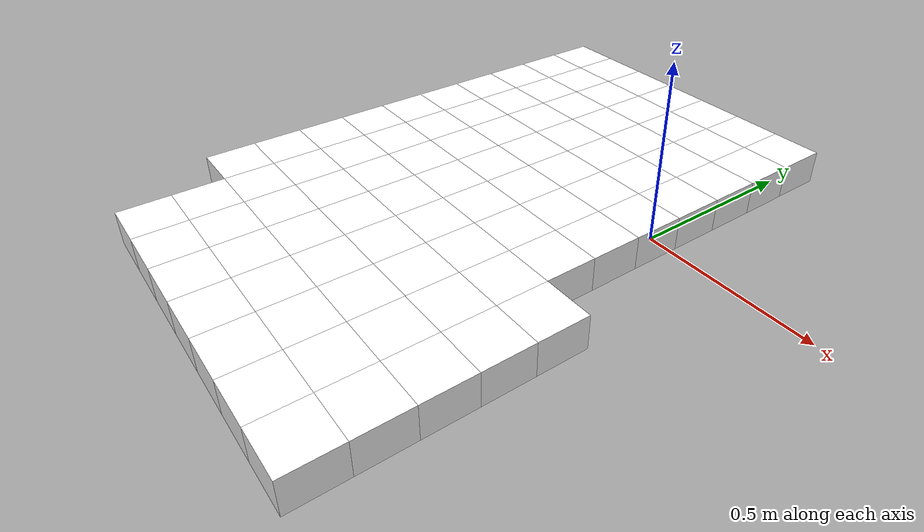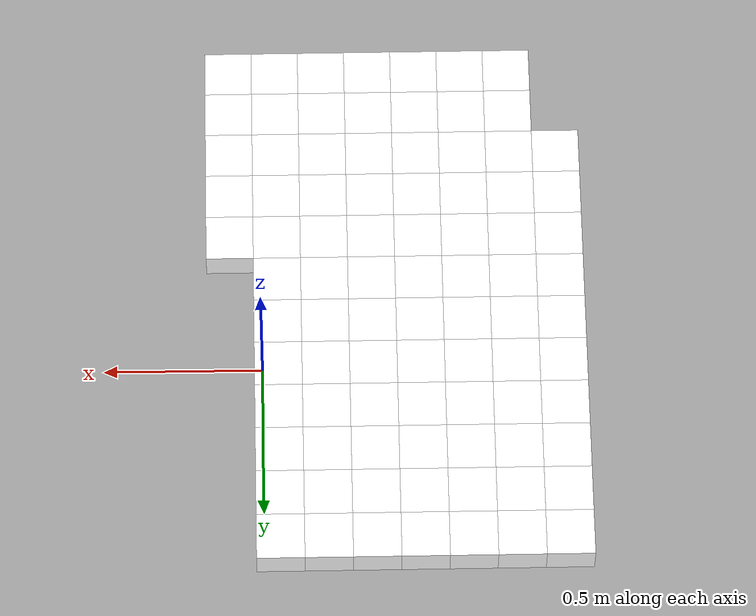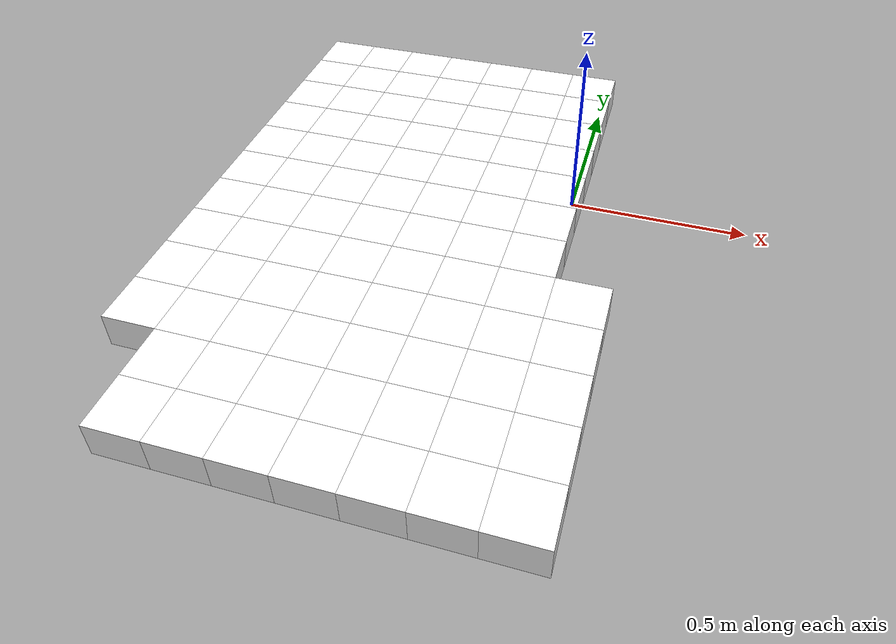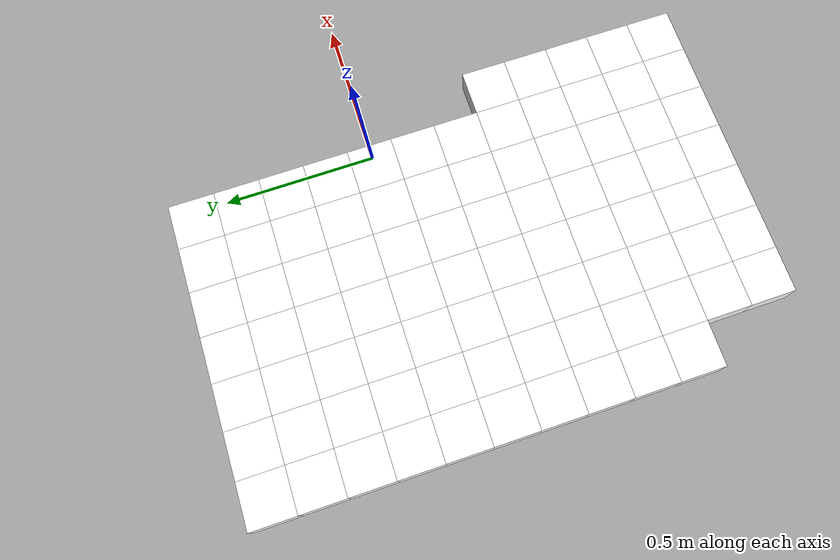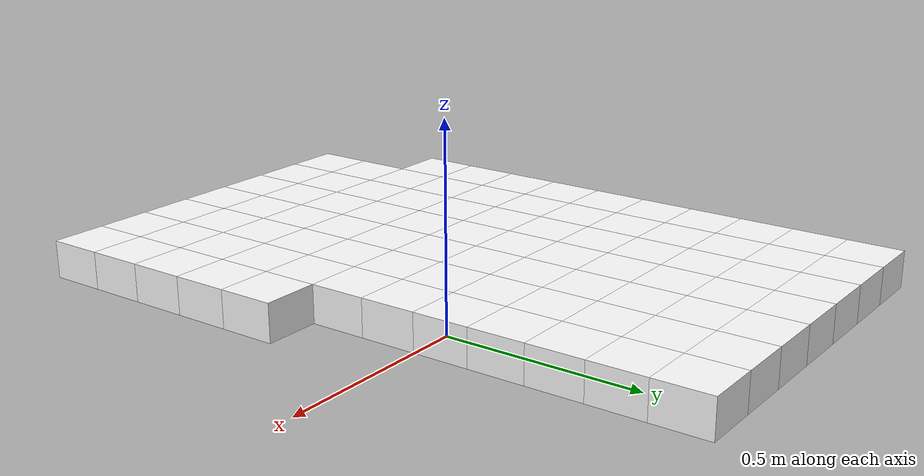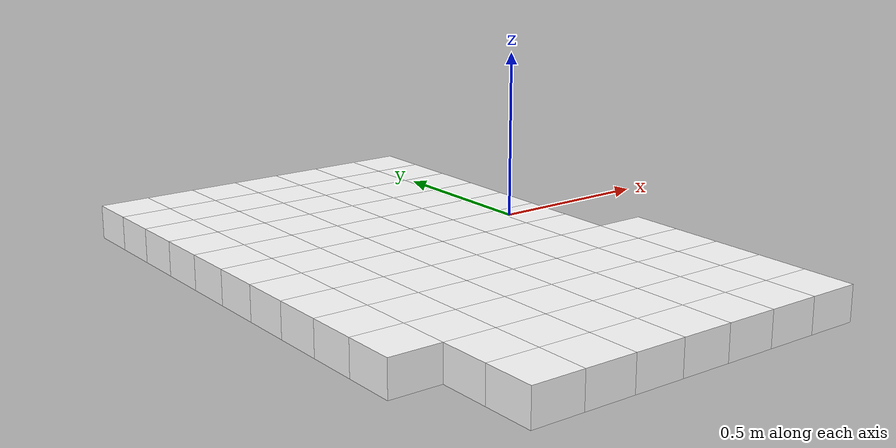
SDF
<sdf version="1.7">
 <world name="default">
  <include><uri>model://sun</uri></include>
  <model name="static_environment">
   <static>true</static>
   <link name="region_140">
    <pose>-0.9500000041566923 0.5999065705961989 0.0 0.0 0.0 4.7123</pose>
    <collision name="region_140_collision">
     <geometry><box><size>0.15 0.15 0.1</size></box></geometry>
     <surface><friction><ode><mu>1.0</mu><mu2>1.0</mu2></ode></friction></surface>
    </collision>
    <visual name="region_140_visual">
     <geometry><box><size>0.15 0.15 0.1</size></box></geometry>
     <material><ambient>1.0 1.0 1.0 1.0</ambient><diffuse>1.0 1.0 1.0 1.0</diffuse></material>
    </visual>
   </link>
   <link name="region_141">
    <pose>-0.9500133512143782 0.44990657119001204 0.0 0.0 0.0 4.7123</pose>
    <collision name="region_141_collision">
     <geometry><box><size>0.15 0.15 0.1</size></box></geometry>
     <surface><friction><ode><mu>1.0</mu><mu2>1.0</mu2></ode></friction></surface>
    </collision>
    <visual name="region_141_visual">
     <geometry><box><size>0.15 0.15 0.1</size></box></geometry>
     <material><ambient>1.0 1.0 1.0 1.0</ambient><diffuse>1.0 1.0 1.0 1.0</diffuse></material>
    </visual>
   </link>
   <link name="region_142">
    <pose>-0.950026698272064 0.29990657178382524 0.0 0.0 0.0 4.7123</pose>
    <collision name="region_142_collision">
     <geometry><box><size>0.15 0.15 0.1</size></box></geometry>
     <surface><friction><ode><mu>1.0</mu><mu2>1.0</mu2></ode></friction></surface>
    </collision>
    <visual name="region_142_visual">
     <geometry><box><size>0.15 0.15 0.1</size></box></geometry>
     <material><ambient>1.0 1.0 1.0 1.0</ambient><diffuse>1.0 1.0 1.0 1.0</diffuse></material>
    </visual>
   </link>
   <link name="region_143">
    <pose>-0.95004004532975 0.14990657237763844 0.0 0.0 0.0 4.7123</pose>
    <collision name="region_143_collision">
     <geometry><box><size>0.15 0.15 0.1</size></box></geometry>
     <surface><friction><ode><mu>1.0</mu><mu2>1.0</mu2></ode></friction></surface>
    </collision>
    <visual name="region_143_visual">
     <geometry><box><size>0.15 0.15 0.1</size></box></geometry>
     <material><ambient>1.0 1.0 1.0 1.0</ambient><diffuse>1.0 1.0 1.0 1.0</diffuse></material>
    </visual>
   </link>
   <link name="region_144">
    <pose>-0.9500533923874357 -9.342702854842067e-05 0.0 0.0 0.0 4.7123</pose>
    <collision name="region_144_collision">
     <geometry><box><size>0.15 0.15 0.1</size></box></geometry>
     <surface><friction><ode><mu>1.0</mu><mu2>1.0</mu2></ode></friction></surface>
    </collision>
    <visual name="region_144_visual">
     <geometry><box><size>0.15 0.15 0.1</size></box></geometry>
     <material><ambient>1.0 1.0 1.0 1.0</ambient><diffuse>1.0 1.0 1.0 1.0</diffuse></material>
    </visual>
   </link>
   <link name="region_145">
    <pose>-0.9500667394451217 -0.15009342643473522 0.0 0.0 0.0 4.7123</pose>
    <collision name="region_145_collision">
     <geometry><box><size>0.15 0.15 0.1</size></box></geometry>
     <surface><friction><ode><mu>1.0</mu><mu2>1.0</mu2></ode></friction></surface>
    </collision>
    <visual name="region_145_visual">
     <geometry><box><size>0.15 0.15 0.1</size></box></geometry>
     <material><ambient>1.0 1.0 1.0 1.0</ambient><diffuse>1.0 1.0 1.0 1.0</diffuse></material>
    </visual>
   </link>
   <link name="region_146">
    <pose>-0.9500800865028076 -0.30009342584092213 0.0 0.0 0.0 4.7123</pose>
    <collision name="region_146_collision">
     <geometry><box><size>0.15 0.15 0.1</size></box></geometry>
     <surface><friction><ode><mu>1.0</mu><mu2>1.0</mu2></ode></friction></surface>
    </collision>
    <visual name="region_146_visual">
     <geometry><box><size>0.15 0.15 0.1</size></box></geometry>
     <material><ambient>1.0 1.0 1.0 1.0</ambient><diffuse>1.0 1.0 1.0 1.0</diffuse></material>
    </visual>
   </link>
   <link name="region_147">
    <pose>-0.9500934335604934 -0.4500934252471088 0.0 0.0 0.0 4.7123</pose>
    <collision name="region_147_collision">
     <geometry><box><size>0.15 0.15 0.1</size></box></geometry>
     <surface><friction><ode><mu>1.0</mu><mu2>1.0</mu2></ode></friction></surface>
    </collision>
    <visual name="region_147_visual">
     <geometry><box><size>0.15 0.15 0.1</size></box></geometry>
     <material><ambient>1.0 1.0 1.0 1.0</ambient><diffuse>1.0 1.0 1.0 1.0</diffuse></material>
    </visual>
   </link>
   <link name="region_148">
    <pose>-0.9501067806181793 -0.6000934246532957 0.0 0.0 0.0 4.7123</pose>
    <collision name="region_148_collision">
     <geometry><box><size>0.15 0.15 0.1</size></box></geometry>
     <surface><friction><ode><mu>1.0</mu><mu2>1.0</mu2></ode></friction></surface>
    </collision>
    <visual name="region_148_visual">
     <geometry><box><size>0.15 0.15 0.1</size></box></geometry>
     <material><ambient>1.0 1.0 1.0 1.0</ambient><diffuse>1.0 1.0 1.0 1.0</diffuse></material>
    </visual>
   </link>
   <link name="region_149">
    <pose>-0.9501201276758651 -0.7500934240594824 0.0 0.0 0.0 4.7123</pose>
    <collision name="region_149_collision">
     <geometry><box><size>0.15 0.15 0.1</size></box></geometry>
     <surface><friction><ode><mu>1.0</mu><mu2>1.0</mu2></ode></friction></surface>
    </collision>
    <visual name="region_149_visual">
     <geometry><box><size>0.15 0.15 0.1</size></box></geometry>
     <material><ambient>1.0 1.0 1.0 1.0</ambient><diffuse>1.0 1.0 1.0 1.0</diffuse></material>
    </visual>
   </link>
   <link name="region_160">
    <pose>-0.8000000047505056 0.5998932235385129 0.0 0.0 0.0 4.7123</pose>
    <collision name="region_160_collision">
     <geometry><box><size>0.15 0.15 0.1</size></box></geometry>
     <surface><friction><ode><mu>1.0</mu><mu2>1.0</mu2></ode></friction></surface>
    </collision>
    <visual name="region_160_visual">
     <geometry><box><size>0.15 0.15 0.1</size></box></geometry>
     <material><ambient>1.0 1.0 1.0 1.0</ambient><diffuse>1.0 1.0 1.0 1.0</diffuse></material>
    </visual>
   </link>
   <link name="region_161">
    <pose>-0.8000133518081916 0.44989322413232613 0.0 0.0 0.0 4.7123</pose>
    <collision name="region_161_collision">
     <geometry><box><size>0.15 0.15 0.1</size></box></geometry>
     <surface><friction><ode><mu>1.0</mu><mu2>1.0</mu2></ode></friction></surface>
    </collision>
    <visual name="region_161_visual">
     <geometry><box><size>0.15 0.15 0.1</size></box></geometry>
     <material><ambient>1.0 1.0 1.0 1.0</ambient><diffuse>1.0 1.0 1.0 1.0</diffuse></material>
    </visual>
   </link>
   <link name="region_162">
    <pose>-0.8000266988658773 0.29989322472613933 0.0 0.0 0.0 4.7123</pose>
    <collision name="region_162_collision">
     <geometry><box><size>0.15 0.15 0.1</size></box></geometry>
     <surface><friction><ode><mu>1.0</mu><mu2>1.0</mu2></ode></friction></surface>
    </collision>
    <visual name="region_162_visual">
     <geometry><box><size>0.15 0.15 0.1</size></box></geometry>
     <material><ambient>1.0 1.0 1.0 1.0</ambient><diffuse>1.0 1.0 1.0 1.0</diffuse></material>
    </visual>
   </link>
   <link name="region_163">
    <pose>-0.8000400459235633 0.14989322531995258 0.0 0.0 0.0 4.7123</pose>
    <collision name="region_163_collision">
     <geometry><box><size>0.15 0.15 0.1</size></box></geometry>
     <surface><friction><ode><mu>1.0</mu><mu2>1.0</mu2></ode></friction></surface>
    </collision>
    <visual name="region_163_visual">
     <geometry><box><size>0.15 0.15 0.1</size></box></geometry>
     <material><ambient>1.0 1.0 1.0 1.0</ambient><diffuse>1.0 1.0 1.0 1.0</diffuse></material>
    </visual>
   </link>
   <link name="region_164">
    <pose>-0.800053392981249 -0.00010677408623427365 0.0 0.0 0.0 4.7123</pose>
    <collision name="region_164_collision">
     <geometry><box><size>0.15 0.15 0.1</size></box></geometry>
     <surface><friction><ode><mu>1.0</mu><mu2>1.0</mu2></ode></friction></surface>
    </collision>
    <visual name="region_164_visual">
     <geometry><box><size>0.15 0.15 0.1</size></box></geometry>
     <material><ambient>1.0 1.0 1.0 1.0</ambient><diffuse>1.0 1.0 1.0 1.0</diffuse></material>
    </visual>
   </link>
   <link name="region_165">
    <pose>-0.800066740038935 -0.15010677349242108 0.0 0.0 0.0 4.7123</pose>
    <collision name="region_165_collision">
     <geometry><box><size>0.15 0.15 0.1</size></box></geometry>
     <surface><friction><ode><mu>1.0</mu><mu2>1.0</mu2></ode></friction></surface>
    </collision>
    <visual name="region_165_visual">
     <geometry><box><size>0.15 0.15 0.1</size></box></geometry>
     <material><ambient>1.0 1.0 1.0 1.0</ambient><diffuse>1.0 1.0 1.0 1.0</diffuse></material>
    </visual>
   </link>
   <link name="region_166">
    <pose>-0.8000800870966209 -0.300106772898608 0.0 0.0 0.0 4.7123</pose>
    <collision name="region_166_collision">
     <geometry><box><size>0.15 0.15 0.1</size></box></geometry>
     <surface><friction><ode><mu>1.0</mu><mu2>1.0</mu2></ode></friction></surface>
    </collision>
    <visual name="region_166_visual">
     <geometry><box><size>0.15 0.15 0.1</size></box></geometry>
     <material><ambient>1.0 1.0 1.0 1.0</ambient><diffuse>1.0 1.0 1.0 1.0</diffuse></material>
    </visual>
   </link>
   <link name="region_167">
    <pose>-0.8000934341543067 -0.4501067723047948 0.0 0.0 0.0 4.7123</pose>
    <collision name="region_167_collision">
     <geometry><box><size>0.15 0.15 0.1</size></box></geometry>
     <surface><friction><ode><mu>1.0</mu><mu2>1.0</mu2></ode></friction></surface>
    </collision>
    <visual name="region_167_visual">
     <geometry><box><size>0.15 0.15 0.1</size></box></geometry>
     <material><ambient>1.0 1.0 1.0 1.0</ambient><diffuse>1.0 1.0 1.0 1.0</diffuse></material>
    </visual>
   </link>
   <link name="region_168">
    <pose>-0.8001067812119926 -0.6001067717109815 0.0 0.0 0.0 4.7123</pose>
    <collision name="region_168_collision">
     <geometry><box><size>0.15 0.15 0.1</size></box></geometry>
     <surface><friction><ode><mu>1.0</mu><mu2>1.0</mu2></ode></friction></surface>
    </collision>
    <visual name="region_168_visual">
     <geometry><box><size>0.15 0.15 0.1</size></box></geometry>
     <material><ambient>1.0 1.0 1.0 1.0</ambient><diffuse>1.0 1.0 1.0 1.0</diffuse></material>
    </visual>
   </link>
   <link name="region_169">
    <pose>-0.8001201282696784 -0.7501067711171682 0.0 0.0 0.0 4.7123</pose>
    <collision name="region_169_collision">
     <geometry><box><size>0.15 0.15 0.1</size></box></geometry>
     <surface><friction><ode><mu>1.0</mu><mu2>1.0</mu2></ode></friction></surface>
    </collision>
    <visual name="region_169_visual">
     <geometry><box><size>0.15 0.15 0.1</size></box></geometry>
     <material><ambient>1.0 1.0 1.0 1.0</ambient><diffuse>1.0 1.0 1.0 1.0</diffuse></material>
    </visual>
   </link>
   <link name="region_170">
    <pose>-0.8001334753273643 -0.9001067705233551 0.0 0.0 0.0 4.7123</pose>
    <collision name="region_170_collision">
     <geometry><box><size>0.15 0.15 0.1</size></box></geometry>
     <surface><friction><ode><mu>1.0</mu><mu2>1.0</mu2></ode></friction></surface>
    </collision>
    <visual name="region_170_visual">
     <geometry><box><size>0.15 0.15 0.1</size></box></geometry>
     <material><ambient>1.0 1.0 1.0 1.0</ambient><diffuse>1.0 1.0 1.0 1.0</diffuse></material>
    </visual>
   </link>
   <link name="region_171">
    <pose>-0.8001468223850503 -1.0501067699295419 0.0 0.0 0.0 4.7123</pose>
    <collision name="region_171_collision">
     <geometry><box><size>0.15 0.15 0.1</size></box></geometry>
     <surface><friction><ode><mu>1.0</mu><mu2>1.0</mu2></ode></friction></surface>
    </collision>
    <visual name="region_171_visual">
     <geometry><box><size>0.15 0.15 0.1</size></box></geometry>
     <material><ambient>1.0 1.0 1.0 1.0</ambient><diffuse>1.0 1.0 1.0 1.0</diffuse></material>
    </visual>
   </link>
   <link name="region_180">
    <pose>-0.6500000053443187 0.5998798764808271 0.0 0.0 0.0 4.7123</pose>
    <collision name="region_180_collision">
     <geometry><box><size>0.15 0.15 0.1</size></box></geometry>
     <surface><friction><ode><mu>1.0</mu><mu2>1.0</mu2></ode></friction></surface>
    </collision>
    <visual name="region_180_visual">
     <geometry><box><size>0.15 0.15 0.1</size></box></geometry>
     <material><ambient>1.0 1.0 1.0 1.0</ambient><diffuse>1.0 1.0 1.0 1.0</diffuse></material>
    </visual>
   </link>
   <link name="region_181">
    <pose>-0.6500133524020046 0.4498798770746403 0.0 0.0 0.0 4.7123</pose>
    <collision name="region_181_collision">
     <geometry><box><size>0.15 0.15 0.1</size></box></geometry>
     <surface><friction><ode><mu>1.0</mu><mu2>1.0</mu2></ode></friction></surface>
    </collision>
    <visual name="region_181_visual">
     <geometry><box><size>0.15 0.15 0.1</size></box></geometry>
     <material><ambient>1.0 1.0 1.0 1.0</ambient><diffuse>1.0 1.0 1.0 1.0</diffuse></material>
    </visual>
   </link>
   <link name="region_182">
    <pose>-0.6500266994596904 0.2998798776684535 0.0 0.0 0.0 4.7123</pose>
    <collision name="region_182_collision">
     <geometry><box><size>0.15 0.15 0.1</size></box></geometry>
     <surface><friction><ode><mu>1.0</mu><mu2>1.0</mu2></ode></friction></surface>
    </collision>
    <visual name="region_182_visual">
     <geometry><box><size>0.15 0.15 0.1</size></box></geometry>
     <material><ambient>1.0 1.0 1.0 1.0</ambient><diffuse>1.0 1.0 1.0 1.0</diffuse></material>
    </visual>
   </link>
   <link name="region_183">
    <pose>-0.6500400465173763 0.14987987826226667 0.0 0.0 0.0 4.7123</pose>
    <collision name="region_183_collision">
     <geometry><box><size>0.15 0.15 0.1</size></box></geometry>
     <surface><friction><ode><mu>1.0</mu><mu2>1.0</mu2></ode></friction></surface>
    </collision>
    <visual name="region_183_visual">
     <geometry><box><size>0.15 0.15 0.1</size></box></geometry>
     <material><ambient>1.0 1.0 1.0 1.0</ambient><diffuse>1.0 1.0 1.0 1.0</diffuse></material>
    </visual>
   </link>
   <link name="region_184">
    <pose>-0.6500533935750621 -0.00012012114392012663 0.0 0.0 0.0 4.7123</pose>
    <collision name="region_184_collision">
     <geometry><box><size>0.15 0.15 0.1</size></box></geometry>
     <surface><friction><ode><mu>1.0</mu><mu2>1.0</mu2></ode></friction></surface>
    </collision>
    <visual name="region_184_visual">
     <geometry><box><size>0.15 0.15 0.1</size></box></geometry>
     <material><ambient>1.0 1.0 1.0 1.0</ambient><diffuse>1.0 1.0 1.0 1.0</diffuse></material>
    </visual>
   </link>
   <link name="region_185">
    <pose>-0.650066740632748 -0.15012012055010704 0.0 0.0 0.0 4.7123</pose>
    <collision name="region_185_collision">
     <geometry><box><size>0.15 0.15 0.1</size></box></geometry>
     <surface><friction><ode><mu>1.0</mu><mu2>1.0</mu2></ode></friction></surface>
    </collision>
    <visual name="region_185_visual">
     <geometry><box><size>0.15 0.15 0.1</size></box></geometry>
     <material><ambient>1.0 1.0 1.0 1.0</ambient><diffuse>1.0 1.0 1.0 1.0</diffuse></material>
    </visual>
   </link>
   <link name="region_186">
    <pose>-0.650080087690434 -0.30012011995629384 0.0 0.0 0.0 4.7123</pose>
    <collision name="region_186_collision">
     <geometry><box><size>0.15 0.15 0.1</size></box></geometry>
     <surface><friction><ode><mu>1.0</mu><mu2>1.0</mu2></ode></friction></surface>
    </collision>
    <visual name="region_186_visual">
     <geometry><box><size>0.15 0.15 0.1</size></box></geometry>
     <material><ambient>1.0 1.0 1.0 1.0</ambient><diffuse>1.0 1.0 1.0 1.0</diffuse></material>
    </visual>
   </link>
   <link name="region_187">
    <pose>-0.6500934347481198 -0.45012011936248075 0.0 0.0 0.0 4.7123</pose>
    <collision name="region_187_collision">
     <geometry><box><size>0.15 0.15 0.1</size></box></geometry>
     <surface><friction><ode><mu>1.0</mu><mu2>1.0</mu2></ode></friction></surface>
    </collision>
    <visual name="region_187_visual">
     <geometry><box><size>0.15 0.15 0.1</size></box></geometry>
     <material><ambient>1.0 1.0 1.0 1.0</ambient><diffuse>1.0 1.0 1.0 1.0</diffuse></material>
    </visual>
   </link>
   <link name="region_188">
    <pose>-0.6501067818058057 -0.6001201187686674 0.0 0.0 0.0 4.7123</pose>
    <collision name="region_188_collision">
     <geometry><box><size>0.15 0.15 0.1</size></box></geometry>
     <surface><friction><ode><mu>1.0</mu><mu2>1.0</mu2></ode></friction></surface>
    </collision>
    <visual name="region_188_visual">
     <geometry><box><size>0.15 0.15 0.1</size></box></geometry>
     <material><ambient>1.0 1.0 1.0 1.0</ambient><diffuse>1.0 1.0 1.0 1.0</diffuse></material>
    </visual>
   </link>
   <link name="region_189">
    <pose>-0.6501201288634915 -0.7501201181748541 0.0 0.0 0.0 4.7123</pose>
    <collision name="region_189_collision">
     <geometry><box><size>0.15 0.15 0.1</size></box></geometry>
     <surface><friction><ode><mu>1.0</mu><mu2>1.0</mu2></ode></friction></surface>
    </collision>
    <visual name="region_189_visual">
     <geometry><box><size>0.15 0.15 0.1</size></box></geometry>
     <material><ambient>1.0 1.0 1.0 1.0</ambient><diffuse>1.0 1.0 1.0 1.0</diffuse></material>
    </visual>
   </link>
   <link name="region_190">
    <pose>-0.6501334759211774 -0.9001201175810408 0.0 0.0 0.0 4.7123</pose>
    <collision name="region_190_collision">
     <geometry><box><size>0.15 0.15 0.1</size></box></geometry>
     <surface><friction><ode><mu>1.0</mu><mu2>1.0</mu2></ode></friction></surface>
    </collision>
    <visual name="region_190_visual">
     <geometry><box><size>0.15 0.15 0.1</size></box></geometry>
     <material><ambient>1.0 1.0 1.0 1.0</ambient><diffuse>1.0 1.0 1.0 1.0</diffuse></material>
    </visual>
   </link>
   <link name="region_191">
    <pose>-0.6501468229788634 -1.0501201169872276 0.0 0.0 0.0 4.7123</pose>
    <collision name="region_191_collision">
     <geometry><box><size>0.15 0.15 0.1</size></box></geometry>
     <surface><friction><ode><mu>1.0</mu><mu2>1.0</mu2></ode></friction></surface>
    </collision>
    <visual name="region_191_visual">
     <geometry><box><size>0.15 0.15 0.1</size></box></geometry>
     <material><ambient>1.0 1.0 1.0 1.0</ambient><diffuse>1.0 1.0 1.0 1.0</diffuse></material>
    </visual>
   </link>
   <link name="region_200">
    <pose>-0.500000005938132 0.5998665294231412 0.0 0.0 0.0 4.7123</pose>
    <collision name="region_200_collision">
     <geometry><box><size>0.15 0.15 0.1</size></box></geometry>
     <surface><friction><ode><mu>1.0</mu><mu2>1.0</mu2></ode></friction></surface>
    </collision>
    <visual name="region_200_visual">
     <geometry><box><size>0.15 0.15 0.1</size></box></geometry>
     <material><ambient>1.0 1.0 1.0 1.0</ambient><diffuse>1.0 1.0 1.0 1.0</diffuse></material>
    </visual>
   </link>
   <link name="region_201">
    <pose>-0.500013352995818 0.4498665300169544 0.0 0.0 0.0 4.7123</pose>
    <collision name="region_201_collision">
     <geometry><box><size>0.15 0.15 0.1</size></box></geometry>
     <surface><friction><ode><mu>1.0</mu><mu2>1.0</mu2></ode></friction></surface>
    </collision>
    <visual name="region_201_visual">
     <geometry><box><size>0.15 0.15 0.1</size></box></geometry>
     <material><ambient>1.0 1.0 1.0 1.0</ambient><diffuse>1.0 1.0 1.0 1.0</diffuse></material>
    </visual>
   </link>
   <link name="region_202">
    <pose>-0.5000267000535037 0.29986653061076757 0.0 0.0 0.0 4.7123</pose>
    <collision name="region_202_collision">
     <geometry><box><size>0.15 0.15 0.1</size></box></geometry>
     <surface><friction><ode><mu>1.0</mu><mu2>1.0</mu2></ode></friction></surface>
    </collision>
    <visual name="region_202_visual">
     <geometry><box><size>0.15 0.15 0.1</size></box></geometry>
     <material><ambient>1.0 1.0 1.0 1.0</ambient><diffuse>1.0 1.0 1.0 1.0</diffuse></material>
    </visual>
   </link>
   <link name="region_203">
    <pose>-0.5000400471111897 0.14986653120458082 0.0 0.0 0.0 4.7123</pose>
    <collision name="region_203_collision">
     <geometry><box><size>0.15 0.15 0.1</size></box></geometry>
     <surface><friction><ode><mu>1.0</mu><mu2>1.0</mu2></ode></friction></surface>
    </collision>
    <visual name="region_203_visual">
     <geometry><box><size>0.15 0.15 0.1</size></box></geometry>
     <material><ambient>1.0 1.0 1.0 1.0</ambient><diffuse>1.0 1.0 1.0 1.0</diffuse></material>
    </visual>
   </link>
   <link name="region_204">
    <pose>-0.5000533941688754 -0.0001334682016059796 0.0 0.0 0.0 4.7123</pose>
    <collision name="region_204_collision">
     <geometry><box><size>0.15 0.15 0.1</size></box></geometry>
     <surface><friction><ode><mu>1.0</mu><mu2>1.0</mu2></ode></friction></surface>
    </collision>
    <visual name="region_204_visual">
     <geometry><box><size>0.15 0.15 0.1</size></box></geometry>
     <material><ambient>1.0 1.0 1.0 1.0</ambient><diffuse>1.0 1.0 1.0 1.0</diffuse></material>
    </visual>
   </link>
   <link name="region_205">
    <pose>-0.5000667412265614 -0.1501334676077929 0.0 0.0 0.0 4.7123</pose>
    <collision name="region_205_collision">
     <geometry><box><size>0.15 0.15 0.1</size></box></geometry>
     <surface><friction><ode><mu>1.0</mu><mu2>1.0</mu2></ode></friction></surface>
    </collision>
    <visual name="region_205_visual">
     <geometry><box><size>0.15 0.15 0.1</size></box></geometry>
     <material><ambient>1.0 1.0 1.0 1.0</ambient><diffuse>1.0 1.0 1.0 1.0</diffuse></material>
    </visual>
   </link>
   <link name="region_206">
    <pose>-0.5000800882842473 -0.3001334670139797 0.0 0.0 0.0 4.7123</pose>
    <collision name="region_206_collision">
     <geometry><box><size>0.15 0.15 0.1</size></box></geometry>
     <surface><friction><ode><mu>1.0</mu><mu2>1.0</mu2></ode></friction></surface>
    </collision>
    <visual name="region_206_visual">
     <geometry><box><size>0.15 0.15 0.1</size></box></geometry>
     <material><ambient>1.0 1.0 1.0 1.0</ambient><diffuse>1.0 1.0 1.0 1.0</diffuse></material>
    </visual>
   </link>
   <link name="region_207">
    <pose>-0.5000934353419331 -0.4501334664201665 0.0 0.0 0.0 4.7123</pose>
    <collision name="region_207_collision">
     <geometry><box><size>0.15 0.15 0.1</size></box></geometry>
     <surface><friction><ode><mu>1.0</mu><mu2>1.0</mu2></ode></friction></surface>
    </collision>
    <visual name="region_207_visual">
     <geometry><box><size>0.15 0.15 0.1</size></box></geometry>
     <material><ambient>1.0 1.0 1.0 1.0</ambient><diffuse>1.0 1.0 1.0 1.0</diffuse></material>
    </visual>
   </link>
   <link name="region_208">
    <pose>-0.500106782399619 -0.6001334658263532 0.0 0.0 0.0 4.7123</pose>
    <collision name="region_208_collision">
     <geometry><box><size>0.15 0.15 0.1</size></box></geometry>
     <surface><friction><ode><mu>1.0</mu><mu2>1.0</mu2></ode></friction></surface>
    </collision>
    <visual name="region_208_visual">
     <geometry><box><size>0.15 0.15 0.1</size></box></geometry>
     <material><ambient>1.0 1.0 1.0 1.0</ambient><diffuse>1.0 1.0 1.0 1.0</diffuse></material>
    </visual>
   </link>
   <link name="region_209">
    <pose>-0.5001201294573048 -0.7501334652325401 0.0 0.0 0.0 4.7123</pose>
    <collision name="region_209_collision">
     <geometry><box><size>0.15 0.15 0.1</size></box></geometry>
     <surface><friction><ode><mu>1.0</mu><mu2>1.0</mu2></ode></friction></surface>
    </collision>
    <visual name="region_209_visual">
     <geometry><box><size>0.15 0.15 0.1</size></box></geometry>
     <material><ambient>1.0 1.0 1.0 1.0</ambient><diffuse>1.0 1.0 1.0 1.0</diffuse></material>
    </visual>
   </link>
   <link name="region_210">
    <pose>-0.5001334765149907 -0.9001334646387268 0.0 0.0 0.0 4.7123</pose>
    <collision name="region_210_collision">
     <geometry><box><size>0.15 0.15 0.1</size></box></geometry>
     <surface><friction><ode><mu>1.0</mu><mu2>1.0</mu2></ode></friction></surface>
    </collision>
    <visual name="region_210_visual">
     <geometry><box><size>0.15 0.15 0.1</size></box></geometry>
     <material><ambient>1.0 1.0 1.0 1.0</ambient><diffuse>1.0 1.0 1.0 1.0</diffuse></material>
    </visual>
   </link>
   <link name="region_211">
    <pose>-0.5001468235726767 -1.0501334640449134 0.0 0.0 0.0 4.7123</pose>
    <collision name="region_211_collision">
     <geometry><box><size>0.15 0.15 0.1</size></box></geometry>
     <surface><friction><ode><mu>1.0</mu><mu2>1.0</mu2></ode></friction></surface>
    </collision>
    <visual name="region_211_visual">
     <geometry><box><size>0.15 0.15 0.1</size></box></geometry>
     <material><ambient>1.0 1.0 1.0 1.0</ambient><diffuse>1.0 1.0 1.0 1.0</diffuse></material>
    </visual>
   </link>
   <link name="region_220">
    <pose>-0.3500000065319453 0.5998531823654554 0.0 0.0 0.0 4.7123</pose>
    <collision name="region_220_collision">
     <geometry><box><size>0.15 0.15 0.1</size></box></geometry>
     <surface><friction><ode><mu>1.0</mu><mu2>1.0</mu2></ode></friction></surface>
    </collision>
    <visual name="region_220_visual">
     <geometry><box><size>0.15 0.15 0.1</size></box></geometry>
     <material><ambient>1.0 1.0 1.0 1.0</ambient><diffuse>1.0 1.0 1.0 1.0</diffuse></material>
    </visual>
   </link>
   <link name="region_221">
    <pose>-0.35001335358963126 0.4498531829592685 0.0 0.0 0.0 4.7123</pose>
    <collision name="region_221_collision">
     <geometry><box><size>0.15 0.15 0.1</size></box></geometry>
     <surface><friction><ode><mu>1.0</mu><mu2>1.0</mu2></ode></friction></surface>
    </collision>
    <visual name="region_221_visual">
     <geometry><box><size>0.15 0.15 0.1</size></box></geometry>
     <material><ambient>1.0 1.0 1.0 1.0</ambient><diffuse>1.0 1.0 1.0 1.0</diffuse></material>
    </visual>
   </link>
   <link name="region_222">
    <pose>-0.350026700647317 0.2998531835530817 0.0 0.0 0.0 4.7123</pose>
    <collision name="region_222_collision">
     <geometry><box><size>0.15 0.15 0.1</size></box></geometry>
     <surface><friction><ode><mu>1.0</mu><mu2>1.0</mu2></ode></friction></surface>
    </collision>
    <visual name="region_222_visual">
     <geometry><box><size>0.15 0.15 0.1</size></box></geometry>
     <material><ambient>1.0 1.0 1.0 1.0</ambient><diffuse>1.0 1.0 1.0 1.0</diffuse></material>
    </visual>
   </link>
   <link name="region_223">
    <pose>-0.35004004770500297 0.1498531841468949 0.0 0.0 0.0 4.7123</pose>
    <collision name="region_223_collision">
     <geometry><box><size>0.15 0.15 0.1</size></box></geometry>
     <surface><friction><ode><mu>1.0</mu><mu2>1.0</mu2></ode></friction></surface>
    </collision>
    <visual name="region_223_visual">
     <geometry><box><size>0.15 0.15 0.1</size></box></geometry>
     <material><ambient>1.0 1.0 1.0 1.0</ambient><diffuse>1.0 1.0 1.0 1.0</diffuse></material>
    </visual>
   </link>
   <link name="region_224">
    <pose>-0.3500533947626887 -0.0001468152592919436 0.0 0.0 0.0 4.7123</pose>
    <collision name="region_224_collision">
     <geometry><box><size>0.15 0.15 0.1</size></box></geometry>
     <surface><friction><ode><mu>1.0</mu><mu2>1.0</mu2></ode></friction></surface>
    </collision>
    <visual name="region_224_visual">
     <geometry><box><size>0.15 0.15 0.1</size></box></geometry>
     <material><ambient>1.0 1.0 1.0 1.0</ambient><diffuse>1.0 1.0 1.0 1.0</diffuse></material>
    </visual>
   </link>
   <link name="region_225">
    <pose>-0.35006674182037467 -0.15014681466547874 0.0 0.0 0.0 4.7123</pose>
    <collision name="region_225_collision">
     <geometry><box><size>0.15 0.15 0.1</size></box></geometry>
     <surface><friction><ode><mu>1.0</mu><mu2>1.0</mu2></ode></friction></surface>
    </collision>
    <visual name="region_225_visual">
     <geometry><box><size>0.15 0.15 0.1</size></box></geometry>
     <material><ambient>1.0 1.0 1.0 1.0</ambient><diffuse>1.0 1.0 1.0 1.0</diffuse></material>
    </visual>
   </link>
   <link name="region_226">
    <pose>-0.35008008887806064 -0.30014681407166555 0.0 0.0 0.0 4.7123</pose>
    <collision name="region_226_collision">
     <geometry><box><size>0.15 0.15 0.1</size></box></geometry>
     <surface><friction><ode><mu>1.0</mu><mu2>1.0</mu2></ode></friction></surface>
    </collision>
    <visual name="region_226_visual">
     <geometry><box><size>0.15 0.15 0.1</size></box></geometry>
     <material><ambient>1.0 1.0 1.0 1.0</ambient><diffuse>1.0 1.0 1.0 1.0</diffuse></material>
    </visual>
   </link>
   <link name="region_227">
    <pose>-0.3500934359357464 -0.45014681347785246 0.0 0.0 0.0 4.7123</pose>
    <collision name="region_227_collision">
     <geometry><box><size>0.15 0.15 0.1</size></box></geometry>
     <surface><friction><ode><mu>1.0</mu><mu2>1.0</mu2></ode></friction></surface>
    </collision>
    <visual name="region_227_visual">
     <geometry><box><size>0.15 0.15 0.1</size></box></geometry>
     <material><ambient>1.0 1.0 1.0 1.0</ambient><diffuse>1.0 1.0 1.0 1.0</diffuse></material>
    </visual>
   </link>
   <link name="region_228">
    <pose>-0.35010678299343234 -0.6001468128840391 0.0 0.0 0.0 4.7123</pose>
    <collision name="region_228_collision">
     <geometry><box><size>0.15 0.15 0.1</size></box></geometry>
     <surface><friction><ode><mu>1.0</mu><mu2>1.0</mu2></ode></friction></surface>
    </collision>
    <visual name="region_228_visual">
     <geometry><box><size>0.15 0.15 0.1</size></box></geometry>
     <material><ambient>1.0 1.0 1.0 1.0</ambient><diffuse>1.0 1.0 1.0 1.0</diffuse></material>
    </visual>
   </link>
   <link name="region_229">
    <pose>-0.3501201300511181 -0.7501468122902258 0.0 0.0 0.0 4.7123</pose>
    <collision name="region_229_collision">
     <geometry><box><size>0.15 0.15 0.1</size></box></geometry>
     <surface><friction><ode><mu>1.0</mu><mu2>1.0</mu2></ode></friction></surface>
    </collision>
    <visual name="region_229_visual">
     <geometry><box><size>0.15 0.15 0.1</size></box></geometry>
     <material><ambient>1.0 1.0 1.0 1.0</ambient><diffuse>1.0 1.0 1.0 1.0</diffuse></material>
    </visual>
   </link>
   <link name="region_230">
    <pose>-0.35013347710880405 -0.9001468116964125 0.0 0.0 0.0 4.7123</pose>
    <collision name="region_230_collision">
     <geometry><box><size>0.15 0.15 0.1</size></box></geometry>
     <surface><friction><ode><mu>1.0</mu><mu2>1.0</mu2></ode></friction></surface>
    </collision>
    <visual name="region_230_visual">
     <geometry><box><size>0.15 0.15 0.1</size></box></geometry>
     <material><ambient>1.0 1.0 1.0 1.0</ambient><diffuse>1.0 1.0 1.0 1.0</diffuse></material>
    </visual>
   </link>
   <link name="region_231">
    <pose>-0.35014682416649 -1.0501468111025996 0.0 0.0 0.0 4.7123</pose>
    <collision name="region_231_collision">
     <geometry><box><size>0.15 0.15 0.1</size></box></geometry>
     <surface><friction><ode><mu>1.0</mu><mu2>1.0</mu2></ode></friction></surface>
    </collision>
    <visual name="region_231_visual">
     <geometry><box><size>0.15 0.15 0.1</size></box></geometry>
     <material><ambient>1.0 1.0 1.0 1.0</ambient><diffuse>1.0 1.0 1.0 1.0</diffuse></material>
    </visual>
   </link>
   <link name="region_240">
    <pose>-0.2000000071257586 0.5998398353077695 0.0 0.0 0.0 4.7123</pose>
    <collision name="region_240_collision">
     <geometry><box><size>0.15 0.15 0.1</size></box></geometry>
     <surface><friction><ode><mu>1.0</mu><mu2>1.0</mu2></ode></friction></surface>
    </collision>
    <visual name="region_240_visual">
     <geometry><box><size>0.15 0.15 0.1</size></box></geometry>
     <material><ambient>1.0 1.0 1.0 1.0</ambient><diffuse>1.0 1.0 1.0 1.0</diffuse></material>
    </visual>
   </link>
   <link name="region_241">
    <pose>-0.20001335418344457 0.44983983590158266 0.0 0.0 0.0 4.7123</pose>
    <collision name="region_241_collision">
     <geometry><box><size>0.15 0.15 0.1</size></box></geometry>
     <surface><friction><ode><mu>1.0</mu><mu2>1.0</mu2></ode></friction></surface>
    </collision>
    <visual name="region_241_visual">
     <geometry><box><size>0.15 0.15 0.1</size></box></geometry>
     <material><ambient>1.0 1.0 1.0 1.0</ambient><diffuse>1.0 1.0 1.0 1.0</diffuse></material>
    </visual>
   </link>
   <link name="region_242">
    <pose>-0.2000267012411303 0.29983983649539586 0.0 0.0 0.0 4.7123</pose>
    <collision name="region_242_collision">
     <geometry><box><size>0.15 0.15 0.1</size></box></geometry>
     <surface><friction><ode><mu>1.0</mu><mu2>1.0</mu2></ode></friction></surface>
    </collision>
    <visual name="region_242_visual">
     <geometry><box><size>0.15 0.15 0.1</size></box></geometry>
     <material><ambient>1.0 1.0 1.0 1.0</ambient><diffuse>1.0 1.0 1.0 1.0</diffuse></material>
    </visual>
   </link>
   <link name="region_243">
    <pose>-0.20004004829881628 0.14983983708920906 0.0 0.0 0.0 4.7123</pose>
    <collision name="region_243_collision">
     <geometry><box><size>0.15 0.15 0.1</size></box></geometry>
     <surface><friction><ode><mu>1.0</mu><mu2>1.0</mu2></ode></friction></surface>
    </collision>
    <visual name="region_243_visual">
     <geometry><box><size>0.15 0.15 0.1</size></box></geometry>
     <material><ambient>1.0 1.0 1.0 1.0</ambient><diffuse>1.0 1.0 1.0 1.0</diffuse></material>
    </visual>
   </link>
   <link name="region_244">
    <pose>-0.20005339535650202 -0.0001601623169777966 0.0 0.0 0.0 4.7123</pose>
    <collision name="region_244_collision">
     <geometry><box><size>0.15 0.15 0.1</size></box></geometry>
     <surface><friction><ode><mu>1.0</mu><mu2>1.0</mu2></ode></friction></surface>
    </collision>
    <visual name="region_244_visual">
     <geometry><box><size>0.15 0.15 0.1</size></box></geometry>
     <material><ambient>1.0 1.0 1.0 1.0</ambient><diffuse>1.0 1.0 1.0 1.0</diffuse></material>
    </visual>
   </link>
   <link name="region_245">
    <pose>-0.20006674241418798 -0.1501601617231646 0.0 0.0 0.0 4.7123</pose>
    <collision name="region_245_collision">
     <geometry><box><size>0.15 0.15 0.1</size></box></geometry>
     <surface><friction><ode><mu>1.0</mu><mu2>1.0</mu2></ode></friction></surface>
    </collision>
    <visual name="region_245_visual">
     <geometry><box><size>0.15 0.15 0.1</size></box></geometry>
     <material><ambient>1.0 1.0 1.0 1.0</ambient><diffuse>1.0 1.0 1.0 1.0</diffuse></material>
    </visual>
   </link>
   <link name="region_246">
    <pose>-0.20008008947187395 -0.3001601611293515 0.0 0.0 0.0 4.7123</pose>
    <collision name="region_246_collision">
     <geometry><box><size>0.15 0.15 0.1</size></box></geometry>
     <surface><friction><ode><mu>1.0</mu><mu2>1.0</mu2></ode></friction></surface>
    </collision>
    <visual name="region_246_visual">
     <geometry><box><size>0.15 0.15 0.1</size></box></geometry>
     <material><ambient>1.0 1.0 1.0 1.0</ambient><diffuse>1.0 1.0 1.0 1.0</diffuse></material>
    </visual>
   </link>
   <link name="region_247">
    <pose>-0.2000934365295597 -0.4501601605355382 0.0 0.0 0.0 4.7123</pose>
    <collision name="region_247_collision">
     <geometry><box><size>0.15 0.15 0.1</size></box></geometry>
     <surface><friction><ode><mu>1.0</mu><mu2>1.0</mu2></ode></friction></surface>
    </collision>
    <visual name="region_247_visual">
     <geometry><box><size>0.15 0.15 0.1</size></box></geometry>
     <material><ambient>1.0 1.0 1.0 1.0</ambient><diffuse>1.0 1.0 1.0 1.0</diffuse></material>
    </visual>
   </link>
   <link name="region_248">
    <pose>-0.20010678358724565 -0.6001601599417251 0.0 0.0 0.0 4.7123</pose>
    <collision name="region_248_collision">
     <geometry><box><size>0.15 0.15 0.1</size></box></geometry>
     <surface><friction><ode><mu>1.0</mu><mu2>1.0</mu2></ode></friction></surface>
    </collision>
    <visual name="region_248_visual">
     <geometry><box><size>0.15 0.15 0.1</size></box></geometry>
     <material><ambient>1.0 1.0 1.0 1.0</ambient><diffuse>1.0 1.0 1.0 1.0</diffuse></material>
    </visual>
   </link>
   <link name="region_249">
    <pose>-0.2001201306449314 -0.7501601593479118 0.0 0.0 0.0 4.7123</pose>
    <collision name="region_249_collision">
     <geometry><box><size>0.15 0.15 0.1</size></box></geometry>
     <surface><friction><ode><mu>1.0</mu><mu2>1.0</mu2></ode></friction></surface>
    </collision>
    <visual name="region_249_visual">
     <geometry><box><size>0.15 0.15 0.1</size></box></geometry>
     <material><ambient>1.0 1.0 1.0 1.0</ambient><diffuse>1.0 1.0 1.0 1.0</diffuse></material>
    </visual>
   </link>
   <link name="region_250">
    <pose>-0.20013347770261736 -0.9001601587540985 0.0 0.0 0.0 4.7123</pose>
    <collision name="region_250_collision">
     <geometry><box><size>0.15 0.15 0.1</size></box></geometry>
     <surface><friction><ode><mu>1.0</mu><mu2>1.0</mu2></ode></friction></surface>
    </collision>
    <visual name="region_250_visual">
     <geometry><box><size>0.15 0.15 0.1</size></box></geometry>
     <material><ambient>1.0 1.0 1.0 1.0</ambient><diffuse>1.0 1.0 1.0 1.0</diffuse></material>
    </visual>
   </link>
   <link name="region_251">
    <pose>-0.20014682476030332 -1.0501601581602853 0.0 0.0 0.0 4.7123</pose>
    <collision name="region_251_collision">
     <geometry><box><size>0.15 0.15 0.1</size></box></geometry>
     <surface><friction><ode><mu>1.0</mu><mu2>1.0</mu2></ode></friction></surface>
    </collision>
    <visual name="region_251_visual">
     <geometry><box><size>0.15 0.15 0.1</size></box></geometry>
     <material><ambient>1.0 1.0 1.0 1.0</ambient><diffuse>1.0 1.0 1.0 1.0</diffuse></material>
    </visual>
   </link>
   <link name="region_260">
    <pose>-0.050000007719571915 0.5998264882500836 0.0 0.0 0.0 4.7123</pose>
    <collision name="region_260_collision">
     <geometry><box><size>0.15 0.15 0.1</size></box></geometry>
     <surface><friction><ode><mu>1.0</mu><mu2>1.0</mu2></ode></friction></surface>
    </collision>
    <visual name="region_260_visual">
     <geometry><box><size>0.15 0.15 0.1</size></box></geometry>
     <material><ambient>1.0 1.0 1.0 1.0</ambient><diffuse>1.0 1.0 1.0 1.0</diffuse></material>
    </visual>
   </link>
   <link name="region_261">
    <pose>-0.05001335477725788 0.44982648884389675 0.0 0.0 0.0 4.7123</pose>
    <collision name="region_261_collision">
     <geometry><box><size>0.15 0.15 0.1</size></box></geometry>
     <surface><friction><ode><mu>1.0</mu><mu2>1.0</mu2></ode></friction></surface>
    </collision>
    <visual name="region_261_visual">
     <geometry><box><size>0.15 0.15 0.1</size></box></geometry>
     <material><ambient>1.0 1.0 1.0 1.0</ambient><diffuse>1.0 1.0 1.0 1.0</diffuse></material>
    </visual>
   </link>
   <link name="region_262">
    <pose>-0.05002670183494362 0.29982648943770995 0.0 0.0 0.0 4.7123</pose>
    <collision name="region_262_collision">
     <geometry><box><size>0.15 0.15 0.1</size></box></geometry>
     <surface><friction><ode><mu>1.0</mu><mu2>1.0</mu2></ode></friction></surface>
    </collision>
    <visual name="region_262_visual">
     <geometry><box><size>0.15 0.15 0.1</size></box></geometry>
     <material><ambient>1.0 1.0 1.0 1.0</ambient><diffuse>1.0 1.0 1.0 1.0</diffuse></material>
    </visual>
   </link>
   <link name="region_263">
    <pose>-0.050040048892629585 0.14982649003152315 0.0 0.0 0.0 4.7123</pose>
    <collision name="region_263_collision">
     <geometry><box><size>0.15 0.15 0.1</size></box></geometry>
     <surface><friction><ode><mu>1.0</mu><mu2>1.0</mu2></ode></friction></surface>
    </collision>
    <visual name="region_263_visual">
     <geometry><box><size>0.15 0.15 0.1</size></box></geometry>
     <material><ambient>1.0 1.0 1.0 1.0</ambient><diffuse>1.0 1.0 1.0 1.0</diffuse></material>
    </visual>
   </link>
   <link name="region_264">
    <pose>-0.05005339595031533 -0.00017350937466364957 0.0 0.0 0.0 4.7123</pose>
    <collision name="region_264_collision">
     <geometry><box><size>0.15 0.15 0.1</size></box></geometry>
     <surface><friction><ode><mu>1.0</mu><mu2>1.0</mu2></ode></friction></surface>
    </collision>
    <visual name="region_264_visual">
     <geometry><box><size>0.15 0.15 0.1</size></box></geometry>
     <material><ambient>1.0 1.0 1.0 1.0</ambient><diffuse>1.0 1.0 1.0 1.0</diffuse></material>
    </visual>
   </link>
   <link name="region_265">
    <pose>-0.05006674300800129 -0.15017350878085045 0.0 0.0 0.0 4.7123</pose>
    <collision name="region_265_collision">
     <geometry><box><size>0.15 0.15 0.1</size></box></geometry>
     <surface><friction><ode><mu>1.0</mu><mu2>1.0</mu2></ode></friction></surface>
    </collision>
    <visual name="region_265_visual">
     <geometry><box><size>0.15 0.15 0.1</size></box></geometry>
     <material><ambient>1.0 1.0 1.0 1.0</ambient><diffuse>1.0 1.0 1.0 1.0</diffuse></material>
    </visual>
   </link>
   <link name="region_266">
    <pose>-0.050080090065687255 -0.30017350818703736 0.0 0.0 0.0 4.7123</pose>
    <collision name="region_266_collision">
     <geometry><box><size>0.15 0.15 0.1</size></box></geometry>
     <surface><friction><ode><mu>1.0</mu><mu2>1.0</mu2></ode></friction></surface>
    </collision>
    <visual name="region_266_visual">
     <geometry><box><size>0.15 0.15 0.1</size></box></geometry>
     <material><ambient>1.0 1.0 1.0 1.0</ambient><diffuse>1.0 1.0 1.0 1.0</diffuse></material>
    </visual>
   </link>
   <link name="region_267">
    <pose>-0.050093437123373 -0.45017350759322416 0.0 0.0 0.0 4.7123</pose>
    <collision name="region_267_collision">
     <geometry><box><size>0.15 0.15 0.1</size></box></geometry>
     <surface><friction><ode><mu>1.0</mu><mu2>1.0</mu2></ode></friction></surface>
    </collision>
    <visual name="region_267_visual">
     <geometry><box><size>0.15 0.15 0.1</size></box></geometry>
     <material><ambient>1.0 1.0 1.0 1.0</ambient><diffuse>1.0 1.0 1.0 1.0</diffuse></material>
    </visual>
   </link>
   <link name="region_268">
    <pose>-0.05010678418105896 -0.6001735069994109 0.0 0.0 0.0 4.7123</pose>
    <collision name="region_268_collision">
     <geometry><box><size>0.15 0.15 0.1</size></box></geometry>
     <surface><friction><ode><mu>1.0</mu><mu2>1.0</mu2></ode></friction></surface>
    </collision>
    <visual name="region_268_visual">
     <geometry><box><size>0.15 0.15 0.1</size></box></geometry>
     <material><ambient>1.0 1.0 1.0 1.0</ambient><diffuse>1.0 1.0 1.0 1.0</diffuse></material>
    </visual>
   </link>
   <link name="region_269">
    <pose>-0.0501201312387447 -0.7501735064055975 0.0 0.0 0.0 4.7123</pose>
    <collision name="region_269_collision">
     <geometry><box><size>0.15 0.15 0.1</size></box></geometry>
     <surface><friction><ode><mu>1.0</mu><mu2>1.0</mu2></ode></friction></surface>
    </collision>
    <visual name="region_269_visual">
     <geometry><box><size>0.15 0.15 0.1</size></box></geometry>
     <material><ambient>1.0 1.0 1.0 1.0</ambient><diffuse>1.0 1.0 1.0 1.0</diffuse></material>
    </visual>
   </link>
   <link name="region_270">
    <pose>-0.05013347829643067 -0.9001735058117845 0.0 0.0 0.0 4.7123</pose>
    <collision name="region_270_collision">
     <geometry><box><size>0.15 0.15 0.1</size></box></geometry>
     <surface><friction><ode><mu>1.0</mu><mu2>1.0</mu2></ode></friction></surface>
    </collision>
    <visual name="region_270_visual">
     <geometry><box><size>0.15 0.15 0.1</size></box></geometry>
     <material><ambient>1.0 1.0 1.0 1.0</ambient><diffuse>1.0 1.0 1.0 1.0</diffuse></material>
    </visual>
   </link>
   <link name="region_271">
    <pose>-0.05014682535411663 -1.050173505217971 0.0 0.0 0.0 4.7123</pose>
    <collision name="region_271_collision">
     <geometry><box><size>0.15 0.15 0.1</size></box></geometry>
     <surface><friction><ode><mu>1.0</mu><mu2>1.0</mu2></ode></friction></surface>
    </collision>
    <visual name="region_271_visual">
     <geometry><box><size>0.15 0.15 0.1</size></box></geometry>
     <material><ambient>1.0 1.0 1.0 1.0</ambient><diffuse>1.0 1.0 1.0 1.0</diffuse></material>
    </visual>
   </link>
   <link name="region_287">
    <pose>0.09990656228281392 -0.45018685465091013 0.0 0.0 0.0 4.7123</pose>
    <collision name="region_287_collision">
     <geometry><box><size>0.15 0.15 0.1</size></box></geometry>
     <surface><friction><ode><mu>1.0</mu><mu2>1.0</mu2></ode></friction></surface>
    </collision>
    <visual name="region_287_visual">
     <geometry><box><size>0.15 0.15 0.1</size></box></geometry>
     <material><ambient>1.0 1.0 1.0 1.0</ambient><diffuse>1.0 1.0 1.0 1.0</diffuse></material>
    </visual>
   </link>
   <link name="region_288">
    <pose>0.09989321522512817 -0.6001868540570968 0.0 0.0 0.0 4.7123</pose>
    <collision name="region_288_collision">
     <geometry><box><size>0.15 0.15 0.1</size></box></geometry>
     <surface><friction><ode><mu>1.0</mu><mu2>1.0</mu2></ode></friction></surface>
    </collision>
    <visual name="region_288_visual">
     <geometry><box><size>0.15 0.15 0.1</size></box></geometry>
     <material><ambient>1.0 1.0 1.0 1.0</ambient><diffuse>1.0 1.0 1.0 1.0</diffuse></material>
    </visual>
   </link>
   <link name="region_289">
    <pose>0.09987986816744199 -0.7501868534632835 0.0 0.0 0.0 4.7123</pose>
    <collision name="region_289_collision">
     <geometry><box><size>0.15 0.15 0.1</size></box></geometry>
     <surface><friction><ode><mu>1.0</mu><mu2>1.0</mu2></ode></friction></surface>
    </collision>
    <visual name="region_289_visual">
     <geometry><box><size>0.15 0.15 0.1</size></box></geometry>
     <material><ambient>1.0 1.0 1.0 1.0</ambient><diffuse>1.0 1.0 1.0 1.0</diffuse></material>
    </visual>
   </link>
   <link name="region_290">
    <pose>0.09986652110975625 -0.9001868528694702 0.0 0.0 0.0 4.7123</pose>
    <collision name="region_290_collision">
     <geometry><box><size>0.15 0.15 0.1</size></box></geometry>
     <surface><friction><ode><mu>1.0</mu><mu2>1.0</mu2></ode></friction></surface>
    </collision>
    <visual name="region_290_visual">
     <geometry><box><size>0.15 0.15 0.1</size></box></geometry>
     <material><ambient>1.0 1.0 1.0 1.0</ambient><diffuse>1.0 1.0 1.0 1.0</diffuse></material>
    </visual>
   </link>
   <link name="region_291">
    <pose>0.0998531740520705 -1.0501868522756568 0.0 0.0 0.0 4.7123</pose>
    <collision name="region_291_collision">
     <geometry><box><size>0.15 0.15 0.1</size></box></geometry>
     <surface><friction><ode><mu>1.0</mu><mu2>1.0</mu2></ode></friction></surface>
    </collision>
    <visual name="region_291_visual">
     <geometry><box><size>0.15 0.15 0.1</size></box></geometry>
     <material><ambient>1.0 1.0 1.0 1.0</ambient><diffuse>1.0 1.0 1.0 1.0</diffuse></material>
    </visual>
   </link>
  </model>
 </world>
</sdf>
